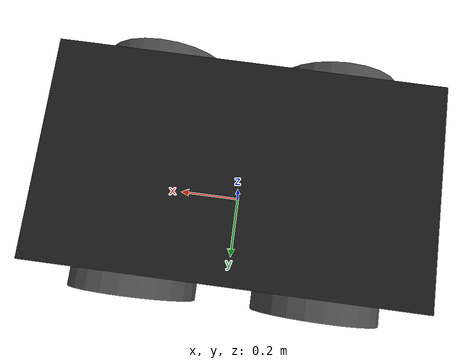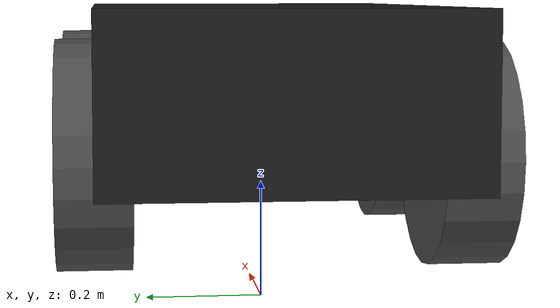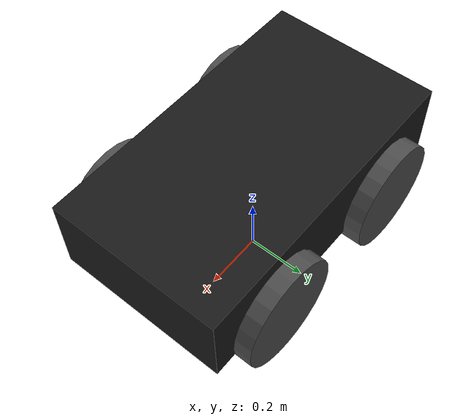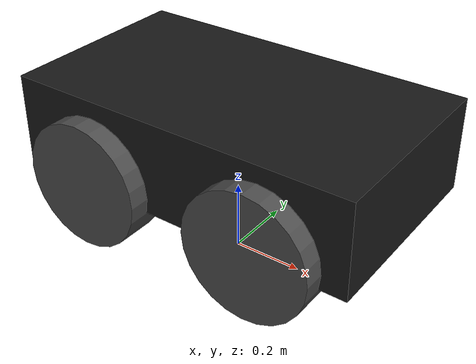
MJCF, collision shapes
<mujoco model="husky">

  <!-- Mesh -->
  <compiler angle="radian" meshdir="./mesh/" autolimits="true" />

  <!-- Option -->
  <option timestep="0.002" iterations="100" solver="Newton" gravity="0 0 -9.81" integrator="RK4"></option>

  <!-- Default -->
  <default>
    <joint limited="false" armature="0.01" /> <!-- rolling joint -->
    <equality solref="0.0002 1" solimp="0.99 0.99 0.0001" />
  </default>

  <!-- Asset -->
  <asset>
    <mesh name="base_link" file="base_link.stl" />
    <mesh name="wheel" file="wheel.stl" />
    <mesh name="top_plate" file="top_plate.stl" />
    <mesh name="user_rail" file="user_rail.stl" />
    <mesh name="bumper" file="bumper.stl" />
  </asset>

  <!-- Body starts here -->
  <worldbody>

    <!-- Base -->
    <body name="base" pos="0 0 0.1" euler="0 0 0">

      <!-- Floating joint -->
      <joint type="free" name="base" />

      <!-- Visual parts -->
      <!-- If both `contype` and `conaffinity` are both 0, the corresponding `geom` is considered as
      visual geoms -->
      <geom pos="0 0 0.14493" type="mesh" contype="0" conaffinity="0" group="1" density="0"
        rgba="0.1 0.1 0.1 1" mesh="base_link" />
      <geom pos="0 0 0.14493" type="mesh" contype="0" conaffinity="0" group="1" density="0"
        rgba="0.8 0.8 0 1" mesh="top_plate" />
      <geom pos="0.272 0 0.38993" type="mesh" contype="0" conaffinity="0" group="1" density="0"
        rgba="0.3 0.3 0.3 1" mesh="user_rail" />
      <geom pos="0.48 0 0.23593" type="mesh" contype="0" conaffinity="0" group="1" density="0"
        rgba="0.3 0.3 0.3 1" mesh="bumper" />
      <geom pos="-0.48 0 0.23593" quat="1.32679e-06 0 0 1" type="mesh" contype="0" conaffinity="0"
        group="1" density="0" rgba="0.3 0.3 0.3 1" mesh="bumper" />

      <!-- Box -->
      <geom size="0.5037 0.28545 0.13375" pos="0 0 0.26991" type="box" density="100"
        rgba="0.1 0.1 0.1 0.5" />

      <!-- Left wheel -->
      <body name="front_left_wheel_link" pos="0.256 0.2854 0.17775" gravcomp="0">
        <!-- Joint -->
        <joint name="front_left_wheel" pos="0 0 0" axis="0 1 0" />
        <!-- Inertial -->
        <inertial pos="0 0 0" quat="0.5 0.5 -0.5 0.5" mass="2.637"
          diaginertia="0.04411 0.02467 0.02467" />
        <!-- Visual parts -->
        <geom type="mesh" contype="0" conaffinity="0" group="1" density="0" rgba="0.3 0.3 0.3 1"
          mesh="wheel" />
        <!-- Collision parts -->
        <geom size="0.17775 0.05715" quat="0.707107 0.707106 0 0" type="cylinder"
          rgba="0.3 0.3 0.3 0.5" />
      </body>

      <!-- Right wheel -->
      <body name="front_right_wheel_link" pos="0.256 -0.2854 0.17775" gravcomp="0">
        <!-- Joint -->
        <joint name="front_right_wheel" pos="0 0 0" axis="0 1 0" />
        <!-- Inertial -->
        <inertial pos="0 0 0" quat="0.5 0.5 -0.5 0.5" mass="2.637"
          diaginertia="0.04411 0.02467 0.02467" />
        <!-- Visual parts -->
        <geom type="mesh" contype="0" conaffinity="0" group="1" density="0" rgba="0.3 0.3 0.3 1"
          mesh="wheel" />
        <!-- Collision parts -->
        <geom size="0.17775 0.05715" quat="0.707107 0.707106 0 0" type="cylinder"
          rgba="0.3 0.3 0.3 0.5" />
      </body>

      <!-- Rear Left wheel -->
      <body name="rear_left_wheel_link" pos="-0.256 0.2854 0.17775" gravcomp="0">
        <!-- Joint -->
        <joint name="rear_left_wheel" pos="0 0 0" axis="0 1 0" />
        <!-- Inertial -->
        <inertial pos="0 0 0" quat="0.5 0.5 -0.5 0.5" mass="2.637"
          diaginertia="0.04411 0.02467 0.02467" />
        <!-- Visual parts -->
        <geom type="mesh" contype="0" conaffinity="0" group="1" density="0" rgba="0.3 0.3 0.3 1"
          mesh="wheel" />
        <!-- Collision parts -->
        <geom size="0.17775 0.05715" quat="0.707107 0.707106 0 0" type="cylinder"
          rgba="0.3 0.3 0.3 0.5" />
      </body>

      <!-- Rear Right wheel -->
      <body name="rear_right_wheel_link" pos="-0.256 -0.2854 0.17775" gravcomp="0">
        <!-- Joint -->
        <joint name="rear_right_wheel" pos="0 0 0" axis="0 1 0" />
        <!-- Inertial -->
        <inertial pos="0 0 0" quat="0.5 0.5 -0.5 0.5" mass="2.637"
          diaginertia="0.04411 0.02467 0.02467" />
        <!-- Visual parts -->
        <geom type="mesh" contype="0" conaffinity="0" group="1" density="0" rgba="0.3 0.3 0.3 1"
          mesh="wheel" />
        <!-- Collision parts -->
        <geom size="0.17775 0.05715" quat="0.707107 0.707106 0 0" type="cylinder"
          rgba="0.3 0.3 0.3 0.5" />
      </body>

    </body>

  </worldbody>

  <!-- Actuators -->
  <actuator>

    <!-- Velocity -->
    <velocity name="front_left_actuator" ctrllimited="true" ctrlrange="-100.0 100.0" gear="1"
      kv="10" joint="front_left_wheel" />
    <velocity name="front_right_actuator" ctrllimited="true" ctrlrange="-100.0 100.0" gear="1"
      kv="10" joint="front_right_wheel" />
    <velocity name="rear_left_actuator" ctrllimited="true" ctrlrange="-100.0 100.0" gear="1"
      kv="10" joint="rear_left_wheel" />
    <velocity name="rear_right_actuator" ctrllimited="true" ctrlrange="-100.0 100.0" gear="1"
      kv="10" joint="rear_right_wheel" />
  </actuator>

</mujoco>
